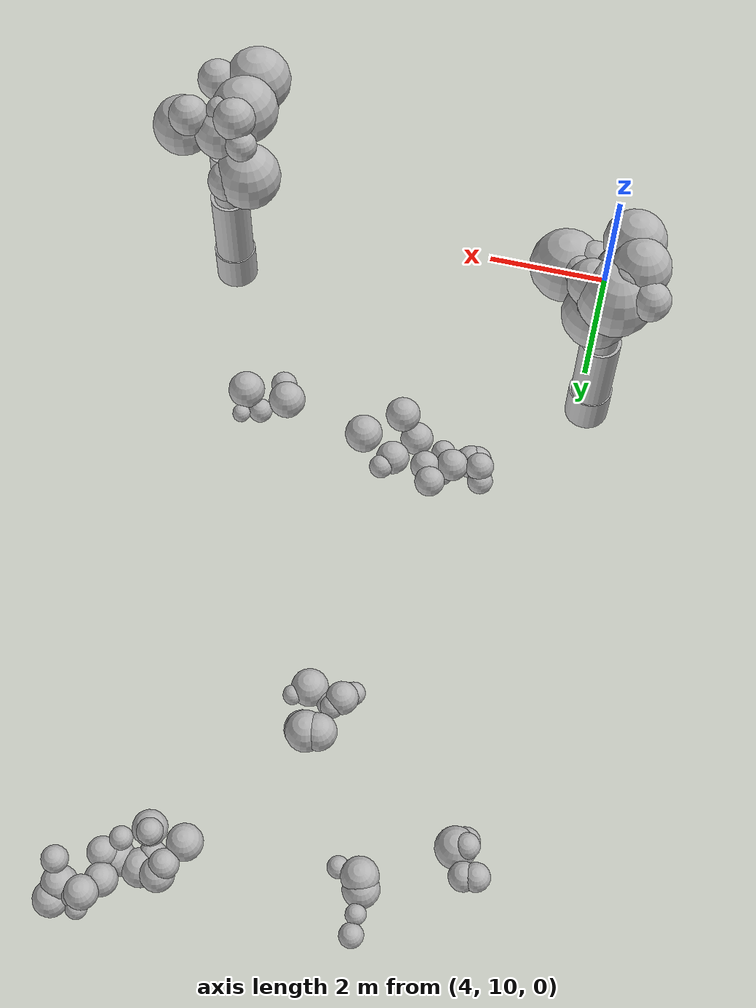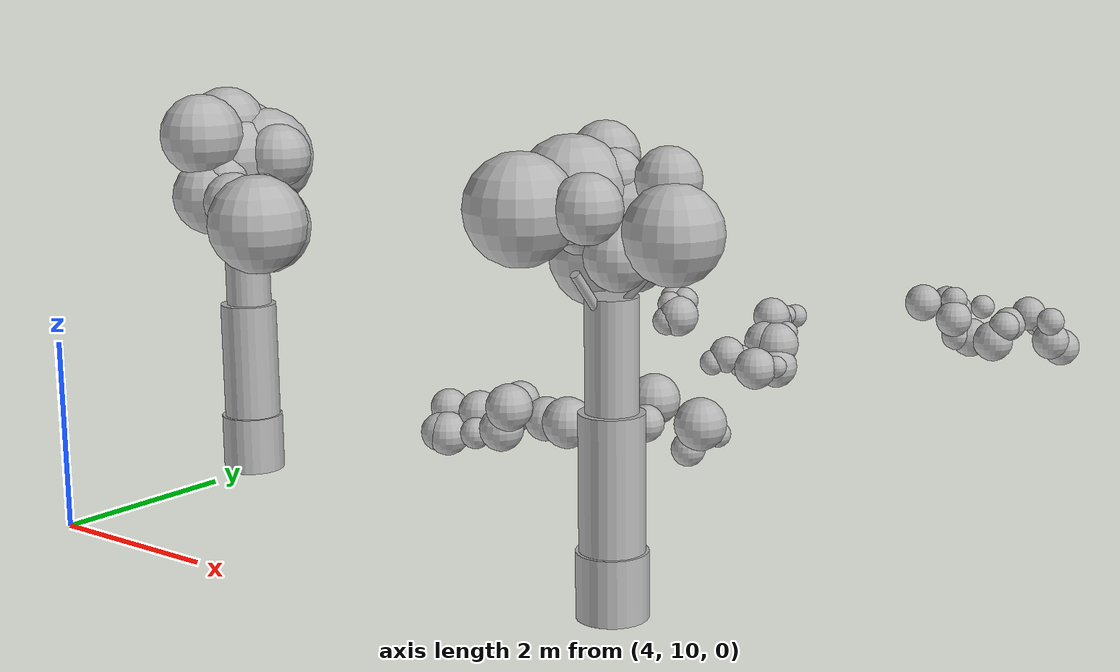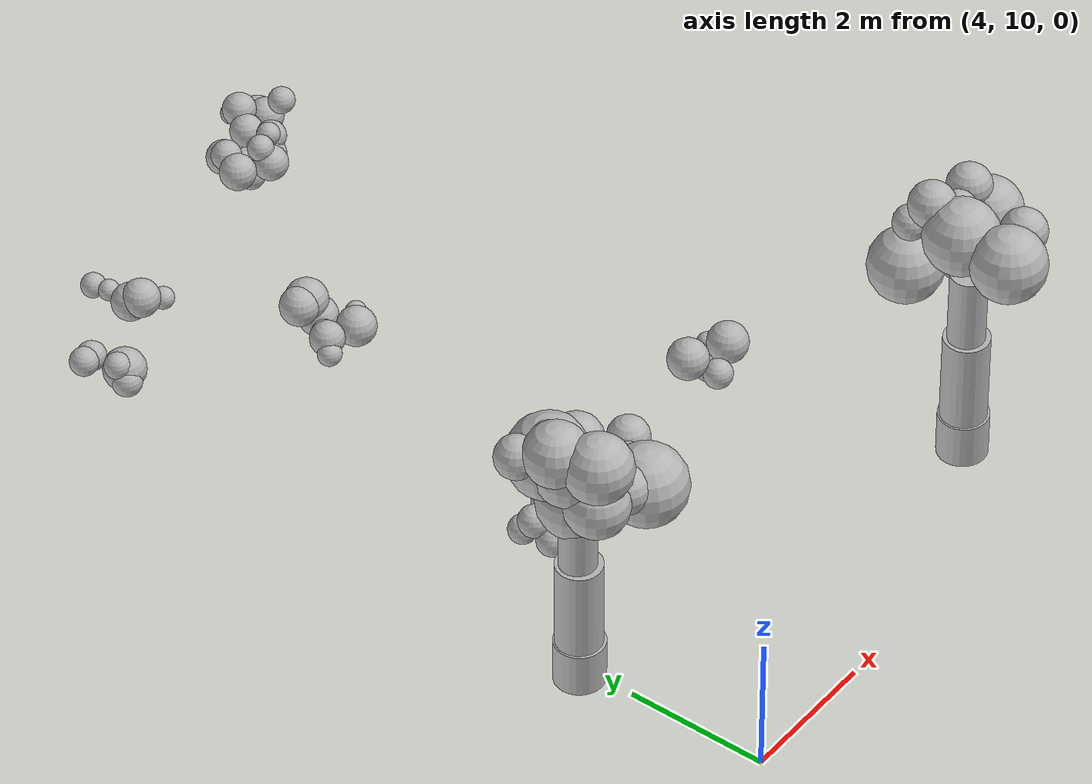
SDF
<sdf version="1.6">
 <world name="default">
  <model name="bush_21">
   <static>true</static>
   <pose>10.2354 11.3124 0 0 0 0</pose>
   <link name="trunk">
    <pose>0 0 1.5000 0 0 0</pose>
    <collision name="trunk_c">
     <geometry><cylinder><radius>0.3500</radius><length>3.0000</length></cylinder></geometry>
    </collision>
   </link>
   <link name="trunk_v0">
    <pose>-0.0003 0.0008 0.3100 0 0 0</pose>
    <visual name="trunk_v0_v">
     <geometry><cylinder><radius>0.3448</radius><length>0.6448</length></cylinder></geometry>
     <material>
      <script>
       <uri>model://bushfire/materials/scripts</uri>
       <uri>model://bushfire/materials/textures</uri>
       <name>Bushfire/CharBark</name>
      </script>
     </material>
    </visual>
   </link>
   <link name="trunk_v1">
    <pose>-0.0023 0.0057 1.2700 0 0 0</pose>
    <visual name="trunk_v1_v">
     <geometry><cylinder><radius>0.3150</radius><length>1.3520</length></cylinder></geometry>
     <material>
      <script>
       <uri>model://bushfire/materials/scripts</uri>
       <uri>model://bushfire/materials/textures</uri>
       <name>Bushfire/BarkStringy</name>
      </script>
     </material>
    </visual>
   </link>
   <link name="trunk_v2">
    <pose>-0.0059 0.0143 2.4600 0 0 0</pose>
    <visual name="trunk_v2_v">
     <geometry><cylinder><radius>0.2520</radius><length>1.1232</length></cylinder></geometry>
     <material>
      <script>
       <uri>model://bushfire/materials/scripts</uri>
       <uri>model://bushfire/materials/textures</uri>
       <name>Bushfire/BarkStringy</name>
      </script>
     </material>
    </visual>
   </link>
   <link name="branch0">
    <pose>0.1821 0.0513 3.0472 0 0.7143 0.2747</pose>
    <visual name="branch0_v">
     <geometry><cylinder><radius>0.0387</radius><length>0.5777</length></cylinder></geometry>
     <material>
      <script>
       <uri>model://bushfire/materials/scripts</uri>
       <uri>model://bushfire/materials/textures</uri>
       <name>Bushfire/BarkStringy</name>
      </script>
     </material>
    </visual>
   </link>
   <link name="branch1">
    <pose>-0.1826 0.2664 3.0593 0 0.8717 2.1717</pose>
    <visual name="branch1_v">
     <geometry><cylinder><radius>0.0464</radius><length>0.8440</length></cylinder></geometry>
     <material>
      <script>
       <uri>model://bushfire/materials/scripts</uri>
       <uri>model://bushfire/materials/textures</uri>
       <name>Bushfire/BarkStringy</name>
      </script>
     </material>
    </visual>
   </link>
   <link name="branch2">
    <pose>-0.0271 -0.2266 2.9912 0 0.6577 4.5934</pose>
    <visual name="branch2_v">
     <geometry><cylinder><radius>0.0470</radius><length>0.7466</length></cylinder></geometry>
     <material>
      <script>
       <uri>model://bushfire/materials/scripts</uri>
       <uri>model://bushfire/materials/textures</uri>
       <name>Bushfire/BarkStringy</name>
      </script>
     </material>
    </visual>
   </link>
   <link name="foliage0">
    <pose>0.0850 0.0015 3.3956 0 0 0</pose>
    <visual name="foliage0_v">
     <geometry><sphere><radius>0.3247</radius></sphere></geometry>
     <material>
      <script>
       <uri>model://bushfire/materials/scripts</uri>
       <uri>model://bushfire/materials/textures</uri>
       <name>Bushfire/Foliage2</name>
      </script>
     </material>
    </visual>
   </link>
   <link name="foliage1">
    <pose>-0.5725 0.6117 3.2602 0 0 0</pose>
    <visual name="foliage1_v">
     <geometry><sphere><radius>0.5106</radius></sphere></geometry>
     <material>
      <script>
       <uri>model://bushfire/materials/scripts</uri>
       <uri>model://bushfire/materials/textures</uri>
       <name>Bushfire/Foliage0</name>
      </script>
     </material>
    </visual>
   </link>
   <link name="foliage2">
    <pose>0.2263 -0.6274 3.9141 0 0 0</pose>
    <visual name="foliage2_v">
     <geometry><sphere><radius>0.3171</radius></sphere></geometry>
     <material>
      <script>
       <uri>model://bushfire/materials/scripts</uri>
       <uri>model://bushfire/materials/textures</uri>
       <name>Bushfire/Foliage1</name>
      </script>
     </material>
    </visual>
   </link>
   <link name="foliage3">
    <pose>0.5780 0.1503 3.6191 0 0 0</pose>
    <visual name="foliage3_v">
     <geometry><sphere><radius>0.4675</radius></sphere></geometry>
     <material>
      <script>
       <uri>model://bushfire/materials/scripts</uri>
       <uri>model://bushfire/materials/textures</uri>
       <name>Bushfire/Foliage1</name>
      </script>
     </material>
    </visual>
   </link>
   <link name="foliage4">
    <pose>-0.3557 0.3927 4.2286 0 0 0</pose>
    <visual name="foliage4_v">
     <geometry><sphere><radius>0.3222</radius></sphere></geometry>
     <material>
      <script>
       <uri>model://bushfire/materials/scripts</uri>
       <uri>model://bushfire/materials/textures</uri>
       <name>Bushfire/Foliage2</name>
      </script>
     </material>
    </visual>
   </link>
   <link name="foliage5">
    <pose>-0.2827 -0.0979 3.6082 0 0 0</pose>
    <visual name="foliage5_v">
     <geometry><sphere><radius>0.2255</radius></sphere></geometry>
     <material>
      <script>
       <uri>model://bushfire/materials/scripts</uri>
       <uri>model://bushfire/materials/textures</uri>
       <name>Bushfire/Foliage0</name>
      </script>
     </material>
    </visual>
   </link>
   <link name="foliage6">
    <pose>0.3910 0.3369 4.0663 0 0 0</pose>
    <visual name="foliage6_v">
     <geometry><sphere><radius>0.3089</radius></sphere></geometry>
     <material>
      <script>
       <uri>model://bushfire/materials/scripts</uri>
       <uri>model://bushfire/materials/textures</uri>
       <name>Bushfire/Foliage2</name>
      </script>
     </material>
    </visual>
   </link>
   <link name="foliage7">
    <pose>-0.5043 0.6115 3.9215 0 0 0</pose>
    <visual name="foliage7_v">
     <geometry><sphere><radius>0.2405</radius></sphere></geometry>
     <material>
      <script>
       <uri>model://bushfire/materials/scripts</uri>
       <uri>model://bushfire/materials/textures</uri>
       <name>Bushfire/Foliage1</name>
      </script>
     </material>
    </visual>
   </link>
   <link name="foliage8">
    <pose>-0.3687 -0.0834 3.9543 0 0 0</pose>
    <visual name="foliage8_v">
     <geometry><sphere><radius>0.5163</radius></sphere></geometry>
     <material>
      <script>
       <uri>model://bushfire/materials/scripts</uri>
       <uri>model://bushfire/materials/textures</uri>
       <name>Bushfire/Foliage1</name>
      </script>
     </material>
    </visual>
   </link>
   <link name="foliage9">
    <pose>-0.0866 0.1777 4.0849 0 0 0</pose>
    <visual name="foliage9_v">
     <geometry><sphere><radius>0.2551</radius></sphere></geometry>
     <material>
      <script>
       <uri>model://bushfire/materials/scripts</uri>
       <uri>model://bushfire/materials/textures</uri>
       <name>Bushfire/Foliage1</name>
      </script>
     </material>
    </visual>
   </link>
   <link name="foliage10">
    <pose>-0.2906 0.7454 3.2253 0 0 0</pose>
    <visual name="foliage10_v">
     <geometry><sphere><radius>0.3182</radius></sphere></geometry>
     <material>
      <script>
       <uri>model://bushfire/materials/scripts</uri>
       <uri>model://bushfire/materials/textures</uri>
       <name>Bushfire/Foliage1</name>
      </script>
     </material>
    </visual>
   </link>
   <link name="foliage11">
    <pose>-0.3723 -0.8091 3.8764 0 0 0</pose>
    <visual name="foliage11_v">
     <geometry><sphere><radius>0.5119</radius></sphere></geometry>
     <material>
      <script>
       <uri>model://bushfire/materials/scripts</uri>
       <uri>model://bushfire/materials/textures</uri>
       <name>Bushfire/Foliage1</name>
      </script>
     </material>
    </visual>
   </link>
   <link name="foliage12">
    <pose>0.5531 0.1116 3.6829 0 0 0</pose>
    <visual name="foliage12_v">
     <geometry><sphere><radius>0.2635</radius></sphere></geometry>
     <material>
      <script>
       <uri>model://bushfire/materials/scripts</uri>
       <uri>model://bushfire/materials/textures</uri>
       <name>Bushfire/Foliage1</name>
      </script>
     </material>
    </visual>
   </link>
   <link name="foliage13">
    <pose>-0.0886 0.3069 3.7921 0 0 0</pose>
    <visual name="foliage13_v">
     <geometry><sphere><radius>0.4100</radius></sphere></geometry>
     <material>
      <script>
       <uri>model://bushfire/materials/scripts</uri>
       <uri>model://bushfire/materials/textures</uri>
       <name>Bushfire/Foliage0</name>
      </script>
     </material>
    </visual>
   </link>
  </model>
  <model name="bush_23">
   <static>true</static>
   <pose>3.8660 12.7272 0 0 0 0</pose>
   <link name="trunk">
    <pose>0 0 1.5000 0 0 0</pose>
    <collision name="trunk_c">
     <geometry><cylinder><radius>0.3500</radius><length>3.0000</length></cylinder></geometry>
    </collision>
   </link>
   <link name="trunk_v0">
    <pose>-0.0004 0.0017 0.3100 0 0 0</pose>
    <visual name="trunk_v0_v">
     <geometry><cylinder><radius>0.3448</radius><length>0.6448</length></cylinder></geometry>
     <material>
      <script>
       <uri>model://bushfire/materials/scripts</uri>
       <uri>model://bushfire/materials/textures</uri>
       <name>Bushfire/CharBark</name>
      </script>
     </material>
    </visual>
   </link>
   <link name="trunk_v1">
    <pose>-0.0025 0.0125 1.2700 0 0 0</pose>
    <visual name="trunk_v1_v">
     <geometry><cylinder><radius>0.3150</radius><length>1.3520</length></cylinder></geometry>
     <material>
      <script>
       <uri>model://bushfire/materials/scripts</uri>
       <uri>model://bushfire/materials/textures</uri>
       <name>Bushfire/BarkSmooth</name>
      </script>
     </material>
    </visual>
   </link>
   <link name="trunk_v2">
    <pose>-0.0064 0.0315 2.4600 0 0 0</pose>
    <visual name="trunk_v2_v">
     <geometry><cylinder><radius>0.2520</radius><length>1.1232</length></cylinder></geometry>
     <material>
      <script>
       <uri>model://bushfire/materials/scripts</uri>
       <uri>model://bushfire/materials/textures</uri>
       <name>Bushfire/BarkSmooth</name>
      </script>
     </material>
    </visual>
   </link>
   <link name="branch0">
    <pose>-0.1610 0.1430 2.9832 0 0.7735 2.4155</pose>
    <visual name="branch0_v">
     <geometry><cylinder><radius>0.0540</radius><length>0.6165</length></cylinder></geometry>
     <material>
      <script>
       <uri>model://bushfire/materials/scripts</uri>
       <uri>model://bushfire/materials/textures</uri>
       <name>Bushfire/BarkSmooth</name>
      </script>
     </material>
    </visual>
   </link>
   <link name="branch1">
    <pose>-0.1077 -0.2204 3.0758 0 0.8170 4.2576</pose>
    <visual name="branch1_v">
     <geometry><cylinder><radius>0.0521</radius><length>0.6729</length></cylinder></geometry>
     <material>
      <script>
       <uri>model://bushfire/materials/scripts</uri>
       <uri>model://bushfire/materials/textures</uri>
       <name>Bushfire/BarkSmooth</name>
      </script>
     </material>
    </visual>
   </link>
   <link name="branch2">
    <pose>0.2123 -0.0740 2.7410 0 0.6726 5.9476</pose>
    <visual name="branch2_v">
     <geometry><cylinder><radius>0.0427</radius><length>0.7217</length></cylinder></geometry>
     <material>
      <script>
       <uri>model://bushfire/materials/scripts</uri>
       <uri>model://bushfire/materials/textures</uri>
       <name>Bushfire/BarkSmooth</name>
      </script>
     </material>
    </visual>
   </link>
   <link name="branch3">
    <pose>0.1725 0.1901 2.6365 0 0.8571 7.1170</pose>
    <visual name="branch3_v">
     <geometry><cylinder><radius>0.0303</radius><length>0.6792</length></cylinder></geometry>
     <material>
      <script>
       <uri>model://bushfire/materials/scripts</uri>
       <uri>model://bushfire/materials/textures</uri>
       <name>Bushfire/BarkSmooth</name>
      </script>
     </material>
    </visual>
   </link>
   <link name="foliage0">
    <pose>-0.1784 0.3629 3.9786 0 0 0</pose>
    <visual name="foliage0_v">
     <geometry><sphere><radius>0.2413</radius></sphere></geometry>
     <material>
      <script>
       <uri>model://bushfire/materials/scripts</uri>
       <uri>model://bushfire/materials/textures</uri>
       <name>Bushfire/Foliage1</name>
      </script>
     </material>
    </visual>
   </link>
   <link name="foliage1">
    <pose>-0.1742 -0.4068 3.9184 0 0 0</pose>
    <visual name="foliage1_v">
     <geometry><sphere><radius>0.4631</radius></sphere></geometry>
     <material>
      <script>
       <uri>model://bushfire/materials/scripts</uri>
       <uri>model://bushfire/materials/textures</uri>
       <name>Bushfire/Foliage1</name>
      </script>
     </material>
    </visual>
   </link>
   <link name="foliage2">
    <pose>0.7421 -0.4677 3.0055 0 0 0</pose>
    <visual name="foliage2_v">
     <geometry><sphere><radius>0.5540</radius></sphere></geometry>
     <material>
      <script>
       <uri>model://bushfire/materials/scripts</uri>
       <uri>model://bushfire/materials/textures</uri>
       <name>Bushfire/Foliage0</name>
      </script>
     </material>
    </visual>
   </link>
   <link name="foliage3">
    <pose>0.1538 0.1820 2.8272 0 0 0</pose>
    <visual name="foliage3_v">
     <geometry><sphere><radius>0.5272</radius></sphere></geometry>
     <material>
      <script>
       <uri>model://bushfire/materials/scripts</uri>
       <uri>model://bushfire/materials/textures</uri>
       <name>Bushfire/Foliage2</name>
      </script>
     </material>
    </visual>
   </link>
   <link name="foliage4">
    <pose>-0.0781 0.4161 3.5956 0 0 0</pose>
    <visual name="foliage4_v">
     <geometry><sphere><radius>0.5743</radius></sphere></geometry>
     <material>
      <script>
       <uri>model://bushfire/materials/scripts</uri>
       <uri>model://bushfire/materials/textures</uri>
       <name>Bushfire/Foliage0</name>
      </script>
     </material>
    </visual>
   </link>
   <link name="foliage5">
    <pose>-0.1234 -0.3468 3.2315 0 0 0</pose>
    <visual name="foliage5_v">
     <geometry><sphere><radius>0.4368</radius></sphere></geometry>
     <material>
      <script>
       <uri>model://bushfire/materials/scripts</uri>
       <uri>model://bushfire/materials/textures</uri>
       <name>Bushfire/Foliage1</name>
      </script>
     </material>
    </visual>
   </link>
   <link name="foliage6">
    <pose>0.5376 -0.1901 3.2703 0 0 0</pose>
    <visual name="foliage6_v">
     <geometry><sphere><radius>0.2523</radius></sphere></geometry>
     <material>
      <script>
       <uri>model://bushfire/materials/scripts</uri>
       <uri>model://bushfire/materials/textures</uri>
       <name>Bushfire/Foliage1</name>
      </script>
     </material>
    </visual>
   </link>
   <link name="foliage7">
    <pose>0.3067 0.2930 3.6542 0 0 0</pose>
    <visual name="foliage7_v">
     <geometry><sphere><radius>0.3635</radius></sphere></geometry>
     <material>
      <script>
       <uri>model://bushfire/materials/scripts</uri>
       <uri>model://bushfire/materials/textures</uri>
       <name>Bushfire/Foliage2</name>
      </script>
     </material>
    </visual>
   </link>
   <link name="foliage8">
    <pose>-0.5548 0.5620 3.8473 0 0 0</pose>
    <visual name="foliage8_v">
     <geometry><sphere><radius>0.2943</radius></sphere></geometry>
     <material>
      <script>
       <uri>model://bushfire/materials/scripts</uri>
       <uri>model://bushfire/materials/textures</uri>
       <name>Bushfire/Foliage1</name>
      </script>
     </material>
    </visual>
   </link>
   <link name="foliage9">
    <pose>0.0218 -0.2790 3.4427 0 0 0</pose>
    <visual name="foliage9_v">
     <geometry><sphere><radius>0.2777</radius></sphere></geometry>
     <material>
      <script>
       <uri>model://bushfire/materials/scripts</uri>
       <uri>model://bushfire/materials/textures</uri>
       <name>Bushfire/Foliage1</name>
      </script>
     </material>
    </visual>
   </link>
   <link name="foliage10">
    <pose>0.3403 -0.4415 3.2112 0 0 0</pose>
    <visual name="foliage10_v">
     <geometry><sphere><radius>0.3337</radius></sphere></geometry>
     <material>
      <script>
       <uri>model://bushfire/materials/scripts</uri>
       <uri>model://bushfire/materials/textures</uri>
       <name>Bushfire/Foliage1</name>
      </script>
     </material>
    </visual>
   </link>
   <link name="foliage11">
    <pose>0.1634 0.2341 3.0584 0 0 0</pose>
    <visual name="foliage11_v">
     <geometry><sphere><radius>0.3653</radius></sphere></geometry>
     <material>
      <script>
       <uri>model://bushfire/materials/scripts</uri>
       <uri>model://bushfire/materials/textures</uri>
       <name>Bushfire/Foliage0</name>
      </script>
     </material>
    </visual>
   </link>
   <link name="foliage12">
    <pose>-0.3354 0.1158 3.9779 0 0 0</pose>
    <visual name="foliage12_v">
     <geometry><sphere><radius>0.4373</radius></sphere></geometry>
     <material>
      <script>
       <uri>model://bushfire/materials/scripts</uri>
       <uri>model://bushfire/materials/textures</uri>
       <name>Bushfire/Foliage2</name>
      </script>
     </material>
    </visual>
   </link>
   <link name="foliage13">
    <pose>-0.1509 0.0420 3.6215 0 0 0</pose>
    <visual name="foliage13_v">
     <geometry><sphere><radius>0.4902</radius></sphere></geometry>
     <material>
      <script>
       <uri>model://bushfire/materials/scripts</uri>
       <uri>model://bushfire/materials/textures</uri>
       <name>Bushfire/Foliage1</name>
      </script>
     </material>
    </visual>
   </link>
  </model>
  <model name="scrub">
   <static>true</static>
   <link name="scrub1_0">
    <pose>4.2203 20.9875 0.6542 0 0 0</pose>
    <visual name="scrub1_0_v">
     <geometry><sphere><radius>0.2053</radius></sphere></geometry>
     <material>
      <script>
       <uri>model://bushfire/materials/scripts</uri>
       <uri>model://bushfire/materials/textures</uri>
       <name>Bushfire/Foliage2</name>
      </script>
     </material>
    </visual>
   </link>
   <link name="scrub1_1">
    <pose>4.4003 20.5802 0.5177 0 0 0</pose>
    <visual name="scrub1_1_v">
     <geometry><sphere><radius>0.2959</radius></sphere></geometry>
     <material>
      <script>
       <uri>model://bushfire/materials/scripts</uri>
       <uri>model://bushfire/materials/textures</uri>
       <name>Bushfire/Foliage0</name>
      </script>
     </material>
    </visual>
   </link>
   <link name="scrub1_2">
    <pose>4.0475 20.9659 0.6909 0 0 0</pose>
    <visual name="scrub1_2_v">
     <geometry><sphere><radius>0.1991</radius></sphere></geometry>
     <material>
      <script>
       <uri>model://bushfire/materials/scripts</uri>
       <uri>model://bushfire/materials/textures</uri>
       <name>Bushfire/Foliage1</name>
      </script>
     </material>
    </visual>
   </link>
   <link name="scrub1_3">
    <pose>4.2535 20.5737 0.6824 0 0 0</pose>
    <visual name="scrub1_3_v">
     <geometry><sphere><radius>0.1835</radius></sphere></geometry>
     <material>
      <script>
       <uri>model://bushfire/materials/scripts</uri>
       <uri>model://bushfire/materials/textures</uri>
       <name>Bushfire/Foliage0</name>
      </script>
     </material>
    </visual>
   </link>
   <link name="scrub1_4">
    <pose>4.2841 20.4485 0.4522 0 0 0</pose>
    <visual name="scrub1_4_v">
     <geometry><sphere><radius>0.2084</radius></sphere></geometry>
     <material>
      <script>
       <uri>model://bushfire/materials/scripts</uri>
       <uri>model://bushfire/materials/textures</uri>
       <name>Bushfire/Foliage2</name>
      </script>
     </material>
    </visual>
   </link>
   <link name="scrub11_0">
    <pose>6.3825 14.2551 0.5150 0 0 0</pose>
    <visual name="scrub11_0_v">
     <geometry><sphere><radius>0.2603</radius></sphere></geometry>
     <material>
      <script>
       <uri>model://bushfire/materials/scripts</uri>
       <uri>model://bushfire/materials/textures</uri>
       <name>Bushfire/Foliage1</name>
      </script>
     </material>
    </visual>
   </link>
   <link name="scrub11_1">
    <pose>7.2000 14.4615 0.6758 0 0 0</pose>
    <visual name="scrub11_1_v">
     <geometry><sphere><radius>0.2959</radius></sphere></geometry>
     <material>
      <script>
       <uri>model://bushfire/materials/scripts</uri>
       <uri>model://bushfire/materials/textures</uri>
       <name>Bushfire/Foliage2</name>
      </script>
     </material>
    </visual>
   </link>
   <link name="scrub11_2">
    <pose>6.6554 14.0760 0.8512 0 0 0</pose>
    <visual name="scrub11_2_v">
     <geometry><sphere><radius>0.2723</radius></sphere></geometry>
     <material>
      <script>
       <uri>model://bushfire/materials/scripts</uri>
       <uri>model://bushfire/materials/textures</uri>
       <name>Bushfire/Foliage2</name>
      </script>
     </material>
    </visual>
   </link>
   <link name="scrub11_3">
    <pose>6.8047 14.9453 0.6067 0 0 0</pose>
    <visual name="scrub11_3_v">
     <geometry><sphere><radius>0.1843</radius></sphere></geometry>
     <material>
      <script>
       <uri>model://bushfire/materials/scripts</uri>
       <uri>model://bushfire/materials/textures</uri>
       <name>Bushfire/Foliage2</name>
      </script>
     </material>
    </visual>
   </link>
   <link name="scrub11_4">
    <pose>6.6688 14.7260 0.5782 0 0 0</pose>
    <visual name="scrub11_4_v">
     <geometry><sphere><radius>0.2604</radius></sphere></geometry>
     <material>
      <script>
       <uri>model://bushfire/materials/scripts</uri>
       <uri>model://bushfire/materials/textures</uri>
       <name>Bushfire/Foliage2</name>
      </script>
     </material>
    </visual>
   </link>
   <link name="scrub11_5">
    <pose>7.1968 14.3861 0.7470 0 0 0</pose>
    <visual name="scrub11_5_v">
     <geometry><sphere><radius>0.1728</radius></sphere></geometry>
     <material>
      <script>
       <uri>model://bushfire/materials/scripts</uri>
       <uri>model://bushfire/materials/textures</uri>
       <name>Bushfire/Foliage0</name>
      </script>
     </material>
    </visual>
   </link>
   <link name="scrub21_0">
    <pose>9.5103 22.3353 0.5066 0 0 0</pose>
    <visual name="scrub21_0_v">
     <geometry><sphere><radius>0.2542</radius></sphere></geometry>
     <material>
      <script>
       <uri>model://bushfire/materials/scripts</uri>
       <uri>model://bushfire/materials/textures</uri>
       <name>Bushfire/Foliage0</name>
      </script>
     </material>
    </visual>
   </link>
   <link name="scrub21_1">
    <pose>9.5971 22.1197 0.8264 0 0 0</pose>
    <visual name="scrub21_1_v">
     <geometry><sphere><radius>0.1880</radius></sphere></geometry>
     <material>
      <script>
       <uri>model://bushfire/materials/scripts</uri>
       <uri>model://bushfire/materials/textures</uri>
       <name>Bushfire/Foliage2</name>
      </script>
     </material>
    </visual>
   </link>
   <link name="scrub21_2">
    <pose>9.1064 22.4584 0.8201 0 0 0</pose>
    <visual name="scrub21_2_v">
     <geometry><sphere><radius>0.2356</radius></sphere></geometry>
     <material>
      <script>
       <uri>model://bushfire/materials/scripts</uri>
       <uri>model://bushfire/materials/textures</uri>
       <name>Bushfire/Foliage1</name>
      </script>
     </material>
    </visual>
   </link>
   <link name="scrub21_3">
    <pose>9.2308 22.5163 0.7059 0 0 0</pose>
    <visual name="scrub21_3_v">
     <geometry><sphere><radius>0.1443</radius></sphere></geometry>
     <material>
      <script>
       <uri>model://bushfire/materials/scripts</uri>
       <uri>model://bushfire/materials/textures</uri>
       <name>Bushfire/Foliage0</name>
      </script>
     </material>
    </visual>
   </link>
   <link name="scrub21_4">
    <pose>9.1436 22.6324 0.6392 0 0 0</pose>
    <visual name="scrub21_4_v">
     <geometry><sphere><radius>0.1520</radius></sphere></geometry>
     <material>
      <script>
       <uri>model://bushfire/materials/scripts</uri>
       <uri>model://bushfire/materials/textures</uri>
       <name>Bushfire/Foliage1</name>
      </script>
     </material>
    </visual>
   </link>
   <link name="scrub21_5">
    <pose>8.8861 21.8139 0.5125 0 0 0</pose>
    <visual name="scrub21_5_v">
     <geometry><sphere><radius>0.2756</radius></sphere></geometry>
     <material>
      <script>
       <uri>model://bushfire/materials/scripts</uri>
       <uri>model://bushfire/materials/textures</uri>
       <name>Bushfire/Foliage2</name>
      </script>
     </material>
    </visual>
   </link>
   <link name="scrub21_6">
    <pose>9.0298 21.8466 0.7257 0 0 0</pose>
    <visual name="scrub21_6_v">
     <geometry><sphere><radius>0.2120</radius></sphere></geometry>
     <material>
      <script>
       <uri>model://bushfire/materials/scripts</uri>
       <uri>model://bushfire/materials/textures</uri>
       <name>Bushfire/Foliage0</name>
      </script>
     </material>
    </visual>
   </link>
   <link name="scrub21_7">
    <pose>9.5806 22.5368 0.3890 0 0 0</pose>
    <visual name="scrub21_7_v">
     <geometry><sphere><radius>0.2530</radius></sphere></geometry>
     <material>
      <script>
       <uri>model://bushfire/materials/scripts</uri>
       <uri>model://bushfire/materials/textures</uri>
       <name>Bushfire/Foliage2</name>
      </script>
     </material>
    </visual>
   </link>
   <link name="scrub21_8">
    <pose>8.9350 22.1995 0.6955 0 0 0</pose>
    <visual name="scrub21_8_v">
     <geometry><sphere><radius>0.2318</radius></sphere></geometry>
     <material>
      <script>
       <uri>model://bushfire/materials/scripts</uri>
       <uri>model://bushfire/materials/textures</uri>
       <name>Bushfire/Foliage0</name>
      </script>
     </material>
    </visual>
   </link>
   <link name="scrub22_0">
    <pose>5.7356 14.6161 0.5426 0 0 0</pose>
    <visual name="scrub22_0_v">
     <geometry><sphere><radius>0.2528</radius></sphere></geometry>
     <material>
      <script>
       <uri>model://bushfire/materials/scripts</uri>
       <uri>model://bushfire/materials/textures</uri>
       <name>Bushfire/Foliage1</name>
      </script>
     </material>
    </visual>
   </link>
   <link name="scrub22_1">
    <pose>6.1457 14.7261 0.5408 0 0 0</pose>
    <visual name="scrub22_1_v">
     <geometry><sphere><radius>0.2321</radius></sphere></geometry>
     <material>
      <script>
       <uri>model://bushfire/materials/scripts</uri>
       <uri>model://bushfire/materials/textures</uri>
       <name>Bushfire/Foliage2</name>
      </script>
     </material>
    </visual>
   </link>
   <link name="scrub22_2">
    <pose>5.3837 14.3014 0.3067 0 0 0</pose>
    <visual name="scrub22_2_v">
     <geometry><sphere><radius>0.2300</radius></sphere></geometry>
     <material>
      <script>
       <uri>model://bushfire/materials/scripts</uri>
       <uri>model://bushfire/materials/textures</uri>
       <name>Bushfire/Foliage2</name>
      </script>
     </material>
    </visual>
   </link>
   <link name="scrub22_3">
    <pose>5.2610 14.6965 0.3594 0 0 0</pose>
    <visual name="scrub22_3_v">
     <geometry><sphere><radius>0.2010</radius></sphere></geometry>
     <material>
      <script>
       <uri>model://bushfire/materials/scripts</uri>
       <uri>model://bushfire/materials/textures</uri>
       <name>Bushfire/Foliage2</name>
      </script>
     </material>
    </visual>
   </link>
   <link name="scrub22_4">
    <pose>5.9337 14.3146 0.3777 0 0 0</pose>
    <visual name="scrub22_4_v">
     <geometry><sphere><radius>0.1854</radius></sphere></geometry>
     <material>
      <script>
       <uri>model://bushfire/materials/scripts</uri>
       <uri>model://bushfire/materials/textures</uri>
       <name>Bushfire/Foliage1</name>
      </script>
     </material>
    </visual>
   </link>
   <link name="scrub22_5">
    <pose>5.4762 14.3384 0.2942 0 0 0</pose>
    <visual name="scrub22_5_v">
     <geometry><sphere><radius>0.2586</radius></sphere></geometry>
     <material>
      <script>
       <uri>model://bushfire/materials/scripts</uri>
       <uri>model://bushfire/materials/textures</uri>
       <name>Bushfire/Foliage2</name>
      </script>
     </material>
    </visual>
   </link>
   <link name="scrub22_6">
    <pose>5.8456 14.7215 0.3455 0 0 0</pose>
    <visual name="scrub22_6_v">
     <geometry><sphere><radius>0.1482</radius></sphere></geometry>
     <material>
      <script>
       <uri>model://bushfire/materials/scripts</uri>
       <uri>model://bushfire/materials/textures</uri>
       <name>Bushfire/Foliage1</name>
      </script>
     </material>
    </visual>
   </link>
   <link name="scrub22_7">
    <pose>6.0068 15.0449 0.6330 0 0 0</pose>
    <visual name="scrub22_7_v">
     <geometry><sphere><radius>0.2342</radius></sphere></geometry>
     <material>
      <script>
       <uri>model://bushfire/materials/scripts</uri>
       <uri>model://bushfire/materials/textures</uri>
       <name>Bushfire/Foliage2</name>
      </script>
     </material>
    </visual>
   </link>
   <link name="scrub22_8">
    <pose>5.3102 14.5493 0.5482 0 0 0</pose>
    <visual name="scrub22_8_v">
     <geometry><sphere><radius>0.2229</radius></sphere></geometry>
     <material>
      <script>
       <uri>model://bushfire/materials/scripts</uri>
       <uri>model://bushfire/materials/textures</uri>
       <name>Bushfire/Foliage1</name>
      </script>
     </material>
    </visual>
   </link>
   <link name="scrub32_0">
    <pose>7.1642 18.9210 0.4619 0 0 0</pose>
    <visual name="scrub32_0_v">
     <geometry><sphere><radius>0.1437</radius></sphere></geometry>
     <material>
      <script>
       <uri>model://bushfire/materials/scripts</uri>
       <uri>model://bushfire/materials/textures</uri>
       <name>Bushfire/Foliage2</name>
      </script>
     </material>
    </visual>
   </link>
   <link name="scrub32_1">
    <pose>6.4471 18.8299 0.5438 0 0 0</pose>
    <visual name="scrub32_1_v">
     <geometry><sphere><radius>0.2406</radius></sphere></geometry>
     <material>
      <script>
       <uri>model://bushfire/materials/scripts</uri>
       <uri>model://bushfire/materials/textures</uri>
       <name>Bushfire/Foliage0</name>
      </script>
     </material>
    </visual>
   </link>
   <link name="scrub32_2">
    <pose>6.8982 19.3497 0.3445 0 0 0</pose>
    <visual name="scrub32_2_v">
     <geometry><sphere><radius>0.2795</radius></sphere></geometry>
     <material>
      <script>
       <uri>model://bushfire/materials/scripts</uri>
       <uri>model://bushfire/materials/textures</uri>
       <name>Bushfire/Foliage1</name>
      </script>
     </material>
    </visual>
   </link>
   <link name="scrub32_3">
    <pose>6.5618 18.9702 0.4932 0 0 0</pose>
    <visual name="scrub32_3_v">
     <geometry><sphere><radius>0.1739</radius></sphere></geometry>
     <material>
      <script>
       <uri>model://bushfire/materials/scripts</uri>
       <uri>model://bushfire/materials/textures</uri>
       <name>Bushfire/Foliage0</name>
      </script>
     </material>
    </visual>
   </link>
   <link name="scrub32_4">
    <pose>6.6263 18.9160 0.4164 0 0 0</pose>
    <visual name="scrub32_4_v">
     <geometry><sphere><radius>0.1735</radius></sphere></geometry>
     <material>
      <script>
       <uri>model://bushfire/materials/scripts</uri>
       <uri>model://bushfire/materials/textures</uri>
       <name>Bushfire/Foliage2</name>
      </script>
     </material>
    </visual>
   </link>
   <link name="scrub32_5">
    <pose>6.9537 18.7445 0.4439 0 0 0</pose>
    <visual name="scrub32_5_v">
     <geometry><sphere><radius>0.2763</radius></sphere></geometry>
     <material>
      <script>
       <uri>model://bushfire/materials/scripts</uri>
       <uri>model://bushfire/materials/textures</uri>
       <name>Bushfire/Foliage2</name>
      </script>
     </material>
    </visual>
   </link>
   <link name="scrub32_6">
    <pose>6.6404 19.4483 0.6371 0 0 0</pose>
    <visual name="scrub32_6_v">
     <geometry><sphere><radius>0.2735</radius></sphere></geometry>
     <material>
      <script>
       <uri>model://bushfire/materials/scripts</uri>
       <uri>model://bushfire/materials/textures</uri>
       <name>Bushfire/Foliage0</name>
      </script>
     </material>
    </visual>
   </link>
   <link name="scrub32_7">
    <pose>6.3092 18.6822 0.4456 0 0 0</pose>
    <visual name="scrub32_7_v">
     <geometry><sphere><radius>0.1681</radius></sphere></geometry>
     <material>
      <script>
       <uri>model://bushfire/materials/scripts</uri>
       <uri>model://bushfire/materials/textures</uri>
       <name>Bushfire/Foliage1</name>
      </script>
     </material>
    </visual>
   </link>
   <link name="scrub32_8">
    <pose>6.8179 19.4719 0.6149 0 0 0</pose>
    <visual name="scrub32_8_v">
     <geometry><sphere><radius>0.2989</radius></sphere></geometry>
     <material>
      <script>
       <uri>model://bushfire/materials/scripts</uri>
       <uri>model://bushfire/materials/textures</uri>
       <name>Bushfire/Foliage1</name>
      </script>
     </material>
    </visual>
   </link>
   <link name="scrub36_0">
    <pose>8.3848 21.6798 0.5548 0 0 0</pose>
    <visual name="scrub36_0_v">
     <geometry><sphere><radius>0.2024</radius></sphere></geometry>
     <material>
      <script>
       <uri>model://bushfire/materials/scripts</uri>
       <uri>model://bushfire/materials/textures</uri>
       <name>Bushfire/Foliage0</name>
      </script>
     </material>
    </visual>
   </link>
   <link name="scrub36_1">
    <pose>7.9353 21.5280 0.9907 0 0 0</pose>
    <visual name="scrub36_1_v">
     <geometry><sphere><radius>0.2530</radius></sphere></geometry>
     <material>
      <script>
       <uri>model://bushfire/materials/scripts</uri>
       <uri>model://bushfire/materials/textures</uri>
       <name>Bushfire/Foliage2</name>
      </script>
     </material>
    </visual>
   </link>
   <link name="scrub36_2">
    <pose>8.4786 21.4096 0.8486 0 0 0</pose>
    <visual name="scrub36_2_v">
     <geometry><sphere><radius>0.2470</radius></sphere></geometry>
     <material>
      <script>
       <uri>model://bushfire/materials/scripts</uri>
       <uri>model://bushfire/materials/textures</uri>
       <name>Bushfire/Foliage2</name>
      </script>
     </material>
    </visual>
   </link>
   <link name="scrub36_3">
    <pose>8.7771 21.6816 1.0090 0 0 0</pose>
    <visual name="scrub36_3_v">
     <geometry><sphere><radius>0.1619</radius></sphere></geometry>
     <material>
      <script>
       <uri>model://bushfire/materials/scripts</uri>
       <uri>model://bushfire/materials/textures</uri>
       <name>Bushfire/Foliage2</name>
      </script>
     </material>
    </visual>
   </link>
   <link name="scrub36_4">
    <pose>8.1219 21.8785 0.9784 0 0 0</pose>
    <visual name="scrub36_4_v">
     <geometry><sphere><radius>0.2092</radius></sphere></geometry>
     <material>
      <script>
       <uri>model://bushfire/materials/scripts</uri>
       <uri>model://bushfire/materials/textures</uri>
       <name>Bushfire/Foliage0</name>
      </script>
     </material>
    </visual>
   </link>
   <link name="scrub36_5">
    <pose>8.1939 21.9900 0.8348 0 0 0</pose>
    <visual name="scrub36_5_v">
     <geometry><sphere><radius>0.2404</radius></sphere></geometry>
     <material>
      <script>
       <uri>model://bushfire/materials/scripts</uri>
       <uri>model://bushfire/materials/textures</uri>
       <name>Bushfire/Foliage2</name>
      </script>
     </material>
    </visual>
   </link>
   <link name="scrub36_6">
    <pose>8.5097 21.8731 0.5073 0 0 0</pose>
    <visual name="scrub36_6_v">
     <geometry><sphere><radius>0.2684</radius></sphere></geometry>
     <material>
      <script>
       <uri>model://bushfire/materials/scripts</uri>
       <uri>model://bushfire/materials/textures</uri>
       <name>Bushfire/Foliage1</name>
      </script>
     </material>
    </visual>
   </link>
   <link name="scrub36_7">
    <pose>8.4171 21.5236 1.0843 0 0 0</pose>
    <visual name="scrub36_7_v">
     <geometry><sphere><radius>0.1831</radius></sphere></geometry>
     <material>
      <script>
       <uri>model://bushfire/materials/scripts</uri>
       <uri>model://bushfire/materials/textures</uri>
       <name>Bushfire/Foliage2</name>
      </script>
     </material>
    </visual>
   </link>
   <link name="scrub54_0">
    <pose>5.9113 21.1801 0.3659 0 0 0</pose>
    <visual name="scrub54_0_v">
     <geometry><sphere><radius>0.1555</radius></sphere></geometry>
     <material>
      <script>
       <uri>model://bushfire/materials/scripts</uri>
       <uri>model://bushfire/materials/textures</uri>
       <name>Bushfire/Foliage2</name>
      </script>
     </material>
    </visual>
   </link>
   <link name="scrub54_1">
    <pose>5.5154 21.7750 0.4630 0 0 0</pose>
    <visual name="scrub54_1_v">
     <geometry><sphere><radius>0.1466</radius></sphere></geometry>
     <material>
      <script>
       <uri>model://bushfire/materials/scripts</uri>
       <uri>model://bushfire/materials/textures</uri>
       <name>Bushfire/Foliage2</name>
      </script>
     </material>
    </visual>
   </link>
   <link name="scrub54_2">
    <pose>5.5799 21.2816 0.5452 0 0 0</pose>
    <visual name="scrub54_2_v">
     <geometry><sphere><radius>0.2672</radius></sphere></geometry>
     <material>
      <script>
       <uri>model://bushfire/materials/scripts</uri>
       <uri>model://bushfire/materials/textures</uri>
       <name>Bushfire/Foliage0</name>
      </script>
     </material>
    </visual>
   </link>
   <link name="scrub54_3">
    <pose>5.5107 22.0474 0.4069 0 0 0</pose>
    <visual name="scrub54_3_v">
     <geometry><sphere><radius>0.1727</radius></sphere></geometry>
     <material>
      <script>
       <uri>model://bushfire/materials/scripts</uri>
       <uri>model://bushfire/materials/textures</uri>
       <name>Bushfire/Foliage0</name>
      </script>
     </material>
    </visual>
   </link>
   <link name="scrub54_4">
    <pose>5.5290 21.4224 0.4397 0 0 0</pose>
    <visual name="scrub54_4_v">
     <geometry><sphere><radius>0.2624</radius></sphere></geometry>
     <material>
      <script>
       <uri>model://bushfire/materials/scripts</uri>
       <uri>model://bushfire/materials/textures</uri>
       <name>Bushfire/Foliage1</name>
      </script>
     </material>
    </visual>
   </link>
   <link name="scrub76_0">
    <pose>8.5985 14.0616 0.9807 0 0 0</pose>
    <visual name="scrub76_0_v">
     <geometry><sphere><radius>0.2040</radius></sphere></geometry>
     <material>
      <script>
       <uri>model://bushfire/materials/scripts</uri>
       <uri>model://bushfire/materials/textures</uri>
       <name>Bushfire/Foliage1</name>
      </script>
     </material>
    </visual>
   </link>
   <link name="scrub76_1">
    <pose>8.9056 14.4242 0.6598 0 0 0</pose>
    <visual name="scrub76_1_v">
     <geometry><sphere><radius>0.1898</radius></sphere></geometry>
     <material>
      <script>
       <uri>model://bushfire/materials/scripts</uri>
       <uri>model://bushfire/materials/textures</uri>
       <name>Bushfire/Foliage0</name>
      </script>
     </material>
    </visual>
   </link>
   <link name="scrub76_2">
    <pose>9.1482 14.6427 0.8161 0 0 0</pose>
    <visual name="scrub76_2_v">
     <geometry><sphere><radius>0.1409</radius></sphere></geometry>
     <material>
      <script>
       <uri>model://bushfire/materials/scripts</uri>
       <uri>model://bushfire/materials/textures</uri>
       <name>Bushfire/Foliage0</name>
      </script>
     </material>
    </visual>
   </link>
   <link name="scrub76_3">
    <pose>8.4443 14.4316 1.1473 0 0 0</pose>
    <visual name="scrub76_3_v">
     <geometry><sphere><radius>0.2848</radius></sphere></geometry>
     <material>
      <script>
       <uri>model://bushfire/materials/scripts</uri>
       <uri>model://bushfire/materials/textures</uri>
       <name>Bushfire/Foliage0</name>
      </script>
     </material>
    </visual>
   </link>
   <link name="scrub76_4">
    <pose>9.1454 14.3073 1.0041 0 0 0</pose>
    <visual name="scrub76_4_v">
     <geometry><sphere><radius>0.2863</radius></sphere></geometry>
     <material>
      <script>
       <uri>model://bushfire/materials/scripts</uri>
       <uri>model://bushfire/materials/textures</uri>
       <name>Bushfire/Foliage1</name>
      </script>
     </material>
    </visual>
   </link>
  </model>
 </world>
</sdf>
